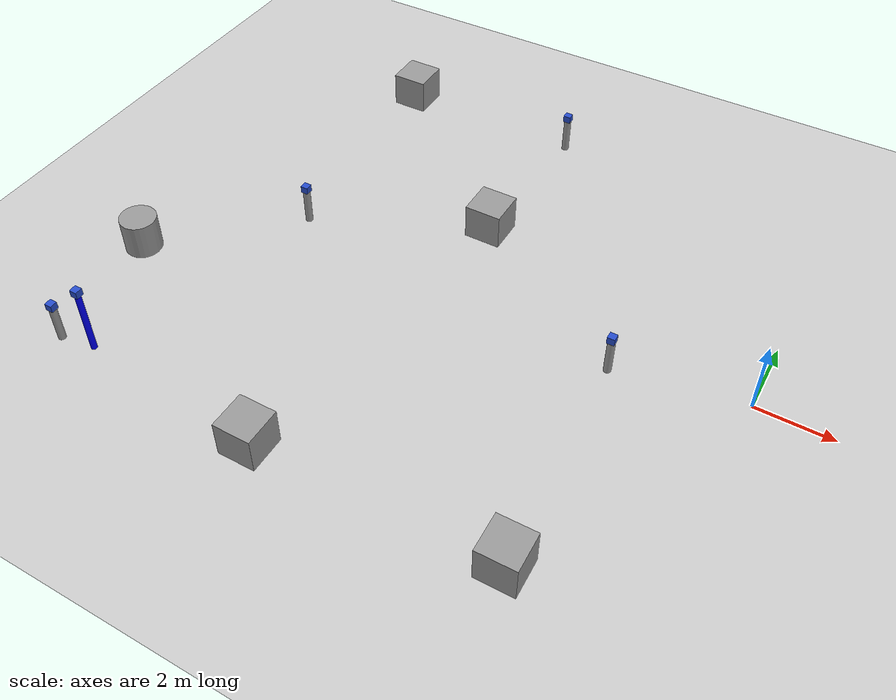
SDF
<sdf version="1.7">
 <world name="simulate_indoor">
  <model name="ground_plane">
   <static>1</static>
   <link name="link">
    <collision name="collision">
     <geometry><plane><normal>0 0 1</normal><size>100 100</size></plane></geometry>
     <surface>
      <contact><collide_bitmask>65535</collide_bitmask></contact>
      <friction><ode><mu>100</mu><mu2>50</mu2></ode></friction>
     </surface>
    </collision>
    <visual name="visual">
     <cast_shadows>0</cast_shadows>
     <geometry><plane><normal>0 0 1</normal><size>100 100</size></plane></geometry>
     <material>
      <script><uri>file://media/materials/scripts/gazebo.material</uri><name>Gazebo/Grey</name></script>
     </material>
    </visual>
   </link>
  </model>
  <model name="UWB_4">
   <link name="link_1">
    <inertial>
     <mass>1</mass>
     <inertia><ixx>0.145833</ixx><ixy>0</ixy><ixz>0</ixz><iyy>0.145833</iyy><iyz>0</iyz><izz>0.125</izz></inertia>
    </inertial>
    <pose>0 0 0.5 0 -0 0</pose>
    <visual name="visual">
     <geometry><cylinder><radius>0.1</radius><length>1</length></cylinder></geometry>
     <material>
      <lighting>1</lighting>
      <script><uri>file://media/materials/scripts/gazebo.material</uri><name>Gazebo/Grey</name></script>
     </material>
    </visual>
    <collision name="collision">
     <geometry><cylinder><radius>0.1</radius><length>1</length></cylinder></geometry>
     <surface>
      <friction>
       <ode><mu>1</mu><mu2>1</mu2><fdir1>0 0 0</fdir1><slip1>0</slip1><slip2>0</slip2></ode>
       <torsional>
        <coefficient>1</coefficient>
        <patch_radius>0</patch_radius>
        <surface_radius>0</surface_radius>
        <use_patch_radius>1</use_patch_radius>
        <ode><slip>0</slip></ode>
       </torsional>
      </friction>
      <bounce><restitution_coefficient>0</restitution_coefficient><threshold>1e+06</threshold></bounce>
      <contact>
       <collide_without_contact>0</collide_without_contact>
       <collide_without_contact_bitmask>1</collide_without_contact_bitmask>
       <collide_bitmask>1</collide_bitmask>
       <ode>
        <soft_cfm>0</soft_cfm>
        <soft_erp>0.2</soft_erp>
        <kp>1e+13</kp>
        <kd>1</kd>
        <max_vel>0.01</max_vel>
        <min_depth>0</min_depth>
       </ode>
       <bullet>
        <split_impulse>1</split_impulse>
        <split_impulse_penetration_threshold>-0.01</split_impulse_penetration_threshold>
        <soft_cfm>0</soft_cfm>
        <soft_erp>0.2</soft_erp>
        <kp>1e+13</kp>
        <kd>1</kd>
       </bullet>
      </contact>
     </surface>
    </collision>
   </link>
   <link name="link_2">
    <inertial>
     <mass>1</mass>
     <inertia>
      <ixx>0.166667</ixx>
      <ixy>0</ixy>
      <ixz>0</ixz>
      <iyy>0.166667</iyy>
      <iyz>0</iyz>
      <izz>0.166667</izz>
     </inertia>
    </inertial>
    <pose>0 0 1.1 0 -0 0</pose>
    <visual name="visual">
     <geometry><box><size>0.2 0.2 0.2</size></box></geometry>
     <material>
      <lighting>1</lighting>
      <script><uri>file://media/materials/scripts/gazebo.material</uri><name>Gazebo/Blue</name></script>
      <shader type="vertex"><normal_map>__default__</normal_map></shader>
     </material>
    </visual>
    <collision name="collision">
     <geometry><box><size>0.2 0.2 0.2</size></box></geometry>
     <surface>
      <friction>
       <ode><mu>1</mu><mu2>1</mu2><fdir1>0 0 0</fdir1><slip1>0</slip1><slip2>0</slip2></ode>
       <torsional>
        <coefficient>1</coefficient>
        <patch_radius>0</patch_radius>
        <surface_radius>0</surface_radius>
        <use_patch_radius>1</use_patch_radius>
        <ode><slip>0</slip></ode>
       </torsional>
      </friction>
      <bounce><restitution_coefficient>0</restitution_coefficient><threshold>1e+06</threshold></bounce>
      <contact>
       <collide_without_contact>0</collide_without_contact>
       <collide_without_contact_bitmask>1</collide_without_contact_bitmask>
       <collide_bitmask>1</collide_bitmask>
       <ode>
        <soft_cfm>0</soft_cfm>
        <soft_erp>0.2</soft_erp>
        <kp>1e+13</kp>
        <kd>1</kd>
        <max_vel>0.01</max_vel>
        <min_depth>0</min_depth>
       </ode>
       <bullet>
        <split_impulse>1</split_impulse>
        <split_impulse_penetration_threshold>-0.01</split_impulse_penetration_threshold>
        <soft_cfm>0</soft_cfm>
        <soft_erp>0.2</soft_erp>
        <kp>1e+13</kp>
        <kd>1</kd>
       </bullet>
      </contact>
     </surface>
    </collision>
   </link>
   <static>1</static>
   <pose>-7.9638 6.79238 0 0 -0 0</pose>
  </model>
  <model name="UWB_2">
   <link name="link_1">
    <inertial>
     <mass>1</mass>
     <inertia><ixx>0.145833</ixx><ixy>0</ixy><ixz>0</ixz><iyy>0.145833</iyy><iyz>0</iyz><izz>0.125</izz></inertia>
    </inertial>
    <pose>0 0 0.5 0 -0 0</pose>
    <visual name="visual">
     <geometry><cylinder><radius>0.1</radius><length>1</length></cylinder></geometry>
     <material>
      <lighting>1</lighting>
      <script><uri>file://media/materials/scripts/gazebo.material</uri><name>Gazebo/Grey</name></script>
     </material>
    </visual>
    <collision name="collision">
     <geometry><cylinder><radius>0.1</radius><length>1</length></cylinder></geometry>
     <surface>
      <friction>
       <ode><mu>1</mu><mu2>1</mu2><fdir1>0 0 0</fdir1><slip1>0</slip1><slip2>0</slip2></ode>
       <torsional>
        <coefficient>1</coefficient>
        <patch_radius>0</patch_radius>
        <surface_radius>0</surface_radius>
        <use_patch_radius>1</use_patch_radius>
        <ode><slip>0</slip></ode>
       </torsional>
      </friction>
      <bounce><restitution_coefficient>0</restitution_coefficient><threshold>1e+06</threshold></bounce>
      <contact>
       <collide_without_contact>0</collide_without_contact>
       <collide_without_contact_bitmask>1</collide_without_contact_bitmask>
       <collide_bitmask>1</collide_bitmask>
       <ode>
        <soft_cfm>0</soft_cfm>
        <soft_erp>0.2</soft_erp>
        <kp>1e+13</kp>
        <kd>1</kd>
        <max_vel>0.01</max_vel>
        <min_depth>0</min_depth>
       </ode>
       <bullet>
        <split_impulse>1</split_impulse>
        <split_impulse_penetration_threshold>-0.01</split_impulse_penetration_threshold>
        <soft_cfm>0</soft_cfm>
        <soft_erp>0.2</soft_erp>
        <kp>1e+13</kp>
        <kd>1</kd>
       </bullet>
      </contact>
     </surface>
    </collision>
   </link>
   <link name="link_2">
    <inertial>
     <mass>1</mass>
     <inertia>
      <ixx>0.166667</ixx>
      <ixy>0</ixy>
      <ixz>0</ixz>
      <iyy>0.166667</iyy>
      <iyz>0</iyz>
      <izz>0.166667</izz>
     </inertia>
    </inertial>
    <pose>0 0 1.1 0 -0 0</pose>
    <visual name="visual">
     <geometry><box><size>0.2 0.2 0.2</size></box></geometry>
     <material>
      <lighting>1</lighting>
      <script><uri>file://media/materials/scripts/gazebo.material</uri><name>Gazebo/Blue</name></script>
      <shader type="vertex"><normal_map>__default__</normal_map></shader>
     </material>
    </visual>
    <collision name="collision">
     <geometry><box><size>0.2 0.2 0.2</size></box></geometry>
     <surface>
      <friction>
       <ode><mu>1</mu><mu2>1</mu2><fdir1>0 0 0</fdir1><slip1>0</slip1><slip2>0</slip2></ode>
       <torsional>
        <coefficient>1</coefficient>
        <patch_radius>0</patch_radius>
        <surface_radius>0</surface_radius>
        <use_patch_radius>1</use_patch_radius>
        <ode><slip>0</slip></ode>
       </torsional>
      </friction>
      <bounce><restitution_coefficient>0</restitution_coefficient><threshold>1e+06</threshold></bounce>
      <contact>
       <collide_without_contact>0</collide_without_contact>
       <collide_without_contact_bitmask>1</collide_without_contact_bitmask>
       <collide_bitmask>1</collide_bitmask>
       <ode>
        <soft_cfm>0</soft_cfm>
        <soft_erp>0.2</soft_erp>
        <kp>1e+13</kp>
        <kd>1</kd>
        <max_vel>0.01</max_vel>
        <min_depth>0</min_depth>
       </ode>
       <bullet>
        <split_impulse>1</split_impulse>
        <split_impulse_penetration_threshold>-0.01</split_impulse_penetration_threshold>
        <soft_cfm>0</soft_cfm>
        <soft_erp>0.2</soft_erp>
        <kp>1e+13</kp>
        <kd>1</kd>
       </bullet>
      </contact>
     </surface>
    </collision>
   </link>
   <static>1</static>
   <pose>-3.36524 -0.646454 0 0 -0 0</pose>
  </model>
  <model name="UWB_0">
   <link name="link_1">
    <inertial>
     <mass>1</mass>
     <inertia><ixx>0.145833</ixx><ixy>0</ixy><ixz>0</ixz><iyy>0.145833</iyy><iyz>0</iyz><izz>0.125</izz></inertia>
    </inertial>
    <pose>0 0 0.5 0 -0 0</pose>
    <visual name="visual">
     <geometry><cylinder><radius>0.1</radius><length>1</length></cylinder></geometry>
     <material>
      <lighting>1</lighting>
      <script><uri>file://media/materials/scripts/gazebo.material</uri><name>Gazebo/Grey</name></script>
     </material>
    </visual>
    <collision name="collision">
     <geometry><cylinder><radius>0.1</radius><length>1</length></cylinder></geometry>
     <surface>
      <friction>
       <ode><mu>1</mu><mu2>1</mu2><fdir1>0 0 0</fdir1><slip1>0</slip1><slip2>0</slip2></ode>
       <torsional>
        <coefficient>1</coefficient>
        <patch_radius>0</patch_radius>
        <surface_radius>0</surface_radius>
        <use_patch_radius>1</use_patch_radius>
        <ode><slip>0</slip></ode>
       </torsional>
      </friction>
      <bounce><restitution_coefficient>0</restitution_coefficient><threshold>1e+06</threshold></bounce>
      <contact>
       <collide_without_contact>0</collide_without_contact>
       <collide_without_contact_bitmask>1</collide_without_contact_bitmask>
       <collide_bitmask>1</collide_bitmask>
       <ode>
        <soft_cfm>0</soft_cfm>
        <soft_erp>0.2</soft_erp>
        <kp>1e+13</kp>
        <kd>1</kd>
        <max_vel>0.01</max_vel>
        <min_depth>0</min_depth>
       </ode>
       <bullet>
        <split_impulse>1</split_impulse>
        <split_impulse_penetration_threshold>-0.01</split_impulse_penetration_threshold>
        <soft_cfm>0</soft_cfm>
        <soft_erp>0.2</soft_erp>
        <kp>1e+13</kp>
        <kd>1</kd>
       </bullet>
      </contact>
     </surface>
    </collision>
   </link>
   <link name="link_2">
    <inertial>
     <mass>1</mass>
     <inertia>
      <ixx>0.166667</ixx>
      <ixy>0</ixy>
      <ixz>0</ixz>
      <iyy>0.166667</iyy>
      <iyz>0</iyz>
      <izz>0.166667</izz>
     </inertia>
    </inertial>
    <pose>0 0 1.1 0 -0 0</pose>
    <visual name="visual">
     <geometry><box><size>0.2 0.2 0.2</size></box></geometry>
     <material>
      <lighting>1</lighting>
      <script><uri>file://media/materials/scripts/gazebo.material</uri><name>Gazebo/Blue</name></script>
      <shader type="vertex"><normal_map>__default__</normal_map></shader>
     </material>
    </visual>
    <collision name="collision">
     <geometry><box><size>0.2 0.2 0.2</size></box></geometry>
     <surface>
      <friction>
       <ode><mu>1</mu><mu2>1</mu2><fdir1>0 0 0</fdir1><slip1>0</slip1><slip2>0</slip2></ode>
       <torsional>
        <coefficient>1</coefficient>
        <patch_radius>0</patch_radius>
        <surface_radius>0</surface_radius>
        <use_patch_radius>1</use_patch_radius>
        <ode><slip>0</slip></ode>
       </torsional>
      </friction>
      <bounce><restitution_coefficient>0</restitution_coefficient><threshold>1e+06</threshold></bounce>
      <contact>
       <collide_without_contact>0</collide_without_contact>
       <collide_without_contact_bitmask>1</collide_without_contact_bitmask>
       <collide_bitmask>1</collide_bitmask>
       <ode>
        <soft_cfm>0</soft_cfm>
        <soft_erp>0.2</soft_erp>
        <kp>1e+13</kp>
        <kd>1</kd>
        <max_vel>0.01</max_vel>
        <min_depth>0</min_depth>
       </ode>
       <bullet>
        <split_impulse>1</split_impulse>
        <split_impulse_penetration_threshold>-0.01</split_impulse_penetration_threshold>
        <soft_cfm>0</soft_cfm>
        <soft_erp>0.2</soft_erp>
        <kp>1e+13</kp>
        <kd>1</kd>
       </bullet>
      </contact>
     </surface>
    </collision>
   </link>
   <static>1</static>
   <pose>-15.4609 -6.4091 0 0 -0 0</pose>
  </model>
  <model name="UWB_5">
   <link name="link_1">
    <inertial>
     <mass>1</mass>
     <inertia><ixx>0.145833</ixx><ixy>0</ixy><ixz>0</ixz><iyy>0.145833</iyy><iyz>0</iyz><izz>0.125</izz></inertia>
    </inertial>
    <pose>0 0 0.5 0 -0 0</pose>
    <visual name="visual">
     <geometry><cylinder><radius>0.1</radius><length>1</length></cylinder></geometry>
     <material>
      <lighting>1</lighting>
      <script><uri>file://media/materials/scripts/gazebo.material</uri><name>Gazebo/Grey</name></script>
     </material>
    </visual>
    <collision name="collision">
     <geometry><cylinder><radius>0.1</radius><length>1</length></cylinder></geometry>
     <surface>
      <friction>
       <ode><mu>1</mu><mu2>1</mu2><fdir1>0 0 0</fdir1><slip1>0</slip1><slip2>0</slip2></ode>
       <torsional>
        <coefficient>1</coefficient>
        <patch_radius>0</patch_radius>
        <surface_radius>0</surface_radius>
        <use_patch_radius>1</use_patch_radius>
        <ode><slip>0</slip></ode>
       </torsional>
      </friction>
      <bounce><restitution_coefficient>0</restitution_coefficient><threshold>1e+06</threshold></bounce>
      <contact>
       <collide_without_contact>0</collide_without_contact>
       <collide_without_contact_bitmask>1</collide_without_contact_bitmask>
       <collide_bitmask>1</collide_bitmask>
       <ode>
        <soft_cfm>0</soft_cfm>
        <soft_erp>0.2</soft_erp>
        <kp>1e+13</kp>
        <kd>1</kd>
        <max_vel>0.01</max_vel>
        <min_depth>0</min_depth>
       </ode>
       <bullet>
        <split_impulse>1</split_impulse>
        <split_impulse_penetration_threshold>-0.01</split_impulse_penetration_threshold>
        <soft_cfm>0</soft_cfm>
        <soft_erp>0.2</soft_erp>
        <kp>1e+13</kp>
        <kd>1</kd>
       </bullet>
      </contact>
     </surface>
    </collision>
   </link>
   <link name="link_2">
    <inertial>
     <mass>1</mass>
     <inertia>
      <ixx>0.166667</ixx>
      <ixy>0</ixy>
      <ixz>0</ixz>
      <iyy>0.166667</iyy>
      <iyz>0</iyz>
      <izz>0.166667</izz>
     </inertia>
    </inertial>
    <pose>0 0 1.1 0 -0 0</pose>
    <visual name="visual">
     <geometry><box><size>0.2 0.2 0.2</size></box></geometry>
     <material>
      <lighting>1</lighting>
      <script><uri>file://media/materials/scripts/gazebo.material</uri><name>Gazebo/Blue</name></script>
      <shader type="vertex"><normal_map>__default__</normal_map></shader>
     </material>
    </visual>
    <collision name="collision">
     <geometry><box><size>0.2 0.2 0.2</size></box></geometry>
     <surface>
      <friction>
       <ode><mu>1</mu><mu2>1</mu2><fdir1>0 0 0</fdir1><slip1>0</slip1><slip2>0</slip2></ode>
       <torsional>
        <coefficient>1</coefficient>
        <patch_radius>0</patch_radius>
        <surface_radius>0</surface_radius>
        <use_patch_radius>1</use_patch_radius>
        <ode><slip>0</slip></ode>
       </torsional>
      </friction>
      <bounce><restitution_coefficient>0</restitution_coefficient><threshold>1e+06</threshold></bounce>
      <contact>
       <collide_without_contact>0</collide_without_contact>
       <collide_without_contact_bitmask>1</collide_without_contact_bitmask>
       <collide_bitmask>1</collide_bitmask>
       <ode>
        <soft_cfm>0</soft_cfm>
        <soft_erp>0.2</soft_erp>
        <kp>1e+13</kp>
        <kd>1</kd>
        <max_vel>0.01</max_vel>
        <min_depth>0</min_depth>
       </ode>
       <bullet>
        <split_impulse>1</split_impulse>
        <split_impulse_penetration_threshold>-0.01</split_impulse_penetration_threshold>
        <soft_cfm>0</soft_cfm>
        <soft_erp>0.2</soft_erp>
        <kp>1e+13</kp>
        <kd>1</kd>
       </bullet>
      </contact>
     </surface>
    </collision>
   </link>
   <static>1</static>
   <pose>-12.7207 0.301525 0 0 -0 0</pose>
  </model>
  <model name="unit_box">
   <pose>-8.16687 2.39414 0.499995 1e-05 -0 0</pose>
   <link name="link">
    <inertial>
     <mass>1</mass>
     <inertia>
      <ixx>0.166667</ixx>
      <ixy>0</ixy>
      <ixz>0</ixz>
      <iyy>0.166667</iyy>
      <iyz>0</iyz>
      <izz>0.166667</izz>
     </inertia>
    </inertial>
    <collision name="collision"><geometry><box><size>1 1 1</size></box></geometry></collision>
    <visual name="visual">
     <geometry><box><size>1 1 1</size></box></geometry>
     <material>
      <script><name>Gazebo/Grey</name><uri>file://media/materials/scripts/gazebo.material</uri></script>
     </material>
    </visual>
   </link>
  </model>
  <model name="unit_box_1">
   <pose>-3.03788 -6.61159 0.5 0 -0 0.015637</pose>
   <link name="link">
    <inertial>
     <mass>1</mass>
     <inertia>
      <ixx>0.166667</ixx>
      <ixy>0</ixy>
      <ixz>0</ixz>
      <iyy>0.166667</iyy>
      <iyz>0</iyz>
      <izz>0.166667</izz>
     </inertia>
    </inertial>
    <collision name="collision"><geometry><box><size>1 1 1</size></box></geometry></collision>
    <visual name="visual">
     <geometry><box><size>1 1 1</size></box></geometry>
     <material>
      <script><name>Gazebo/Grey</name><uri>file://media/materials/scripts/gazebo.material</uri></script>
     </material>
    </visual>
   </link>
  </model>
  <model name="unit_box_2">
   <pose>-9.42078 -6.75338 0.499995 -1e-05 0 0</pose>
   <link name="link">
    <inertial>
     <mass>1</mass>
     <inertia>
      <ixx>0.166667</ixx>
      <ixy>0</ixy>
      <ixz>0</ixz>
      <iyy>0.166667</iyy>
      <iyz>0</iyz>
      <izz>0.166667</izz>
     </inertia>
    </inertial>
    <collision name="collision"><geometry><box><size>1 1 1</size></box></geometry></collision>
    <visual name="visual">
     <geometry><box><size>1 1 1</size></box></geometry>
     <material>
      <script><name>Gazebo/Grey</name><uri>file://media/materials/scripts/gazebo.material</uri></script>
     </material>
    </visual>
   </link>
  </model>
  <model name="unit_box_6">
   <pose>-13.0893 6.78479 0.499995 -1e-05 0 0</pose>
   <link name="link">
    <inertial>
     <mass>1</mass>
     <inertia>
      <ixx>0.166667</ixx>
      <ixy>0</ixy>
      <ixz>0</ixz>
      <iyy>0.166667</iyy>
      <iyz>0</iyz>
      <izz>0.166667</izz>
     </inertia>
    </inertial>
    <collision name="collision"><geometry><box><size>1 1 1</size></box></geometry></collision>
    <visual name="visual">
     <geometry><box><size>1 1 1</size></box></geometry>
     <material>
      <script><name>Gazebo/Grey</name><uri>file://media/materials/scripts/gazebo.material</uri></script>
     </material>
    </visual>
   </link>
  </model>
  <model name="unit_cylinder_0">
   <pose>-15.9645 -2.81285 0.499993 -3e-06 -4e-06 -0</pose>
   <link name="link">
    <inertial>
     <mass>1</mass>
     <inertia><ixx>0.145833</ixx><ixy>0</ixy><ixz>0</ixz><iyy>0.145833</iyy><iyz>0</iyz><izz>0.125</izz></inertia>
    </inertial>
    <collision name="collision">
     <geometry><cylinder><radius>0.5</radius><length>1</length></cylinder></geometry>
    </collision>
    <visual name="visual">
     <geometry><cylinder><radius>0.5</radius><length>1</length></cylinder></geometry>
     <material>
      <script><name>Gazebo/Grey</name><uri>file://media/materials/scripts/gazebo.material</uri></script>
     </material>
    </visual>
   </link>
  </model>
  <model name="UWB_8">
   <link name="link_1">
    <inertial>
     <mass>1</mass>
     <inertia><ixx>0.145833</ixx><ixy>0</ixy><ixz>0</ixz><iyy>0.145833</iyy><iyz>0</iyz><izz>0.125</izz></inertia>
    </inertial>
    <pose>0 0 0.95 0 -0 0</pose>
    <visual name="visual">
     <geometry><cylinder><radius>0.08</radius><length>1.9</length></cylinder></geometry>
     <material>
      <lighting>1</lighting>
      <script><uri>file://media/materials/scripts/gazebo.material</uri><name>Gazebo/Grey</name></script>
      <shader type="pixel"><normal_map>__default__</normal_map></shader>
      <ambient>0 0 1 1</ambient>
      <diffuse>0 0 1 1</diffuse>
      <specular>0 0 1 1</specular>
      <emissive>0 0 1 1</emissive>
     </material>
    </visual>
    <collision name="collision">
     <geometry><cylinder><radius>0.08</radius><length>1.9</length></cylinder></geometry>
     <surface>
      <friction>
       <ode><mu>1</mu><mu2>1</mu2><fdir1>0 0 0</fdir1><slip1>0</slip1><slip2>0</slip2></ode>
       <torsional>
        <coefficient>1</coefficient>
        <patch_radius>0</patch_radius>
        <surface_radius>0</surface_radius>
        <use_patch_radius>1</use_patch_radius>
        <ode><slip>0</slip></ode>
       </torsional>
      </friction>
      <bounce><restitution_coefficient>0</restitution_coefficient><threshold>1e+06</threshold></bounce>
      <contact>
       <collide_without_contact>0</collide_without_contact>
       <collide_without_contact_bitmask>1</collide_without_contact_bitmask>
       <collide_bitmask>1</collide_bitmask>
       <ode>
        <soft_cfm>0</soft_cfm>
        <soft_erp>0.2</soft_erp>
        <kp>1e+13</kp>
        <kd>1</kd>
        <max_vel>0.01</max_vel>
        <min_depth>0</min_depth>
       </ode>
       <bullet>
        <split_impulse>1</split_impulse>
        <split_impulse_penetration_threshold>-0.01</split_impulse_penetration_threshold>
        <soft_cfm>0</soft_cfm>
        <soft_erp>0.2</soft_erp>
        <kp>1e+13</kp>
        <kd>1</kd>
       </bullet>
      </contact>
     </surface>
    </collision>
   </link>
   <link name="link_2">
    <inertial>
     <mass>1</mass>
     <inertia>
      <ixx>0.166667</ixx>
      <ixy>0</ixy>
      <ixz>0</ixz>
      <iyy>0.166667</iyy>
      <iyz>0</iyz>
      <izz>0.166667</izz>
     </inertia>
    </inertial>
    <pose>0 0 1.9 0 -0 0</pose>
    <visual name="visual">
     <geometry><box><size>0.2 0.2 0.2</size></box></geometry>
     <material>
      <lighting>1</lighting>
      <script><uri>file://media/materials/scripts/gazebo.material</uri><name>Gazebo/Blue</name></script>
      <shader type="pixel"><normal_map>__default__</normal_map></shader>
      <ambient>1 0 0 1</ambient>
      <diffuse>1 0 0 1</diffuse>
      <specular>1 0 0 1</specular>
      <emissive>1 0 0 1</emissive>
     </material>
    </visual>
    <collision name="collision">
     <geometry><box><size>0.2 0.2 0.2</size></box></geometry>
     <surface>
      <friction>
       <ode><mu>1</mu><mu2>1</mu2><fdir1>0 0 0</fdir1><slip1>0</slip1><slip2>0</slip2></ode>
       <torsional>
        <coefficient>1</coefficient>
        <patch_radius>0</patch_radius>
        <surface_radius>0</surface_radius>
        <use_patch_radius>1</use_patch_radius>
        <ode><slip>0</slip></ode>
       </torsional>
      </friction>
      <bounce><restitution_coefficient>0</restitution_coefficient><threshold>1e+06</threshold></bounce>
      <contact>
       <collide_without_contact>0</collide_without_contact>
       <collide_without_contact_bitmask>1</collide_without_contact_bitmask>
       <collide_bitmask>1</collide_bitmask>
       <ode>
        <soft_cfm>0</soft_cfm>
        <soft_erp>0.2</soft_erp>
        <kp>1e+13</kp>
        <kd>1</kd>
        <max_vel>0.01</max_vel>
        <min_depth>0</min_depth>
       </ode>
       <bullet>
        <split_impulse>1</split_impulse>
        <split_impulse_penetration_threshold>-0.01</split_impulse_penetration_threshold>
        <soft_cfm>0</soft_cfm>
        <soft_erp>0.2</soft_erp>
        <kp>1e+13</kp>
        <kd>1</kd>
       </bullet>
      </contact>
     </surface>
    </collision>
   </link>
   <static>1</static>
   <pose>-14.5369 -6.26715 0 0 -0 0</pose>
  </model>
 </world>
</sdf>
